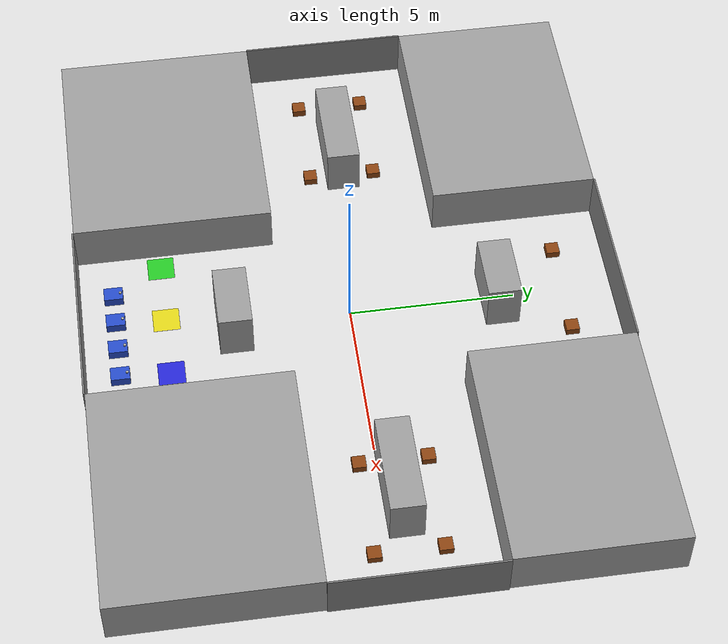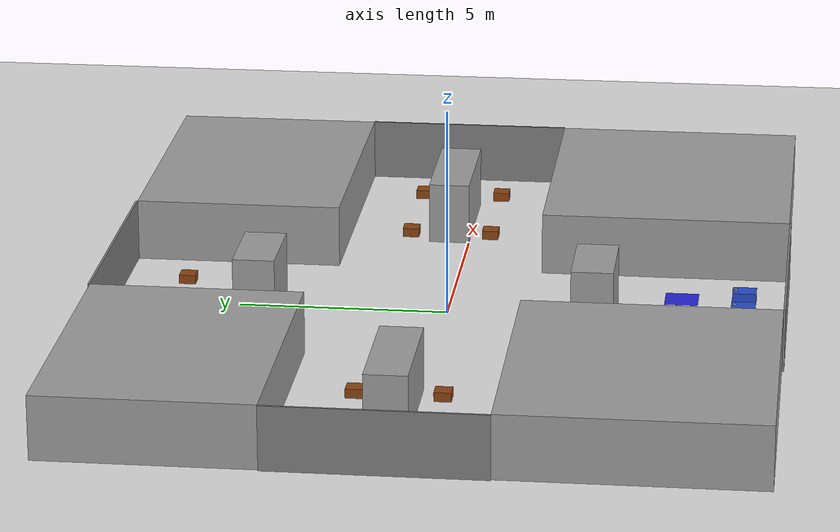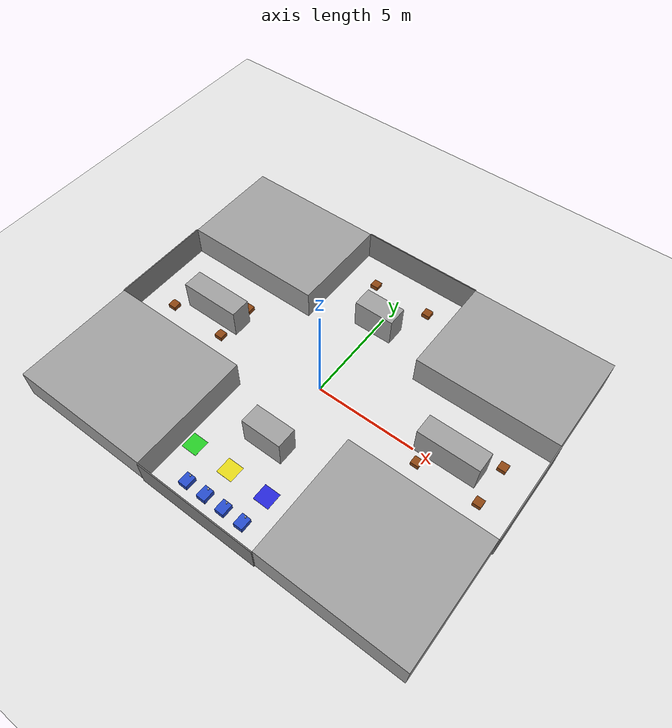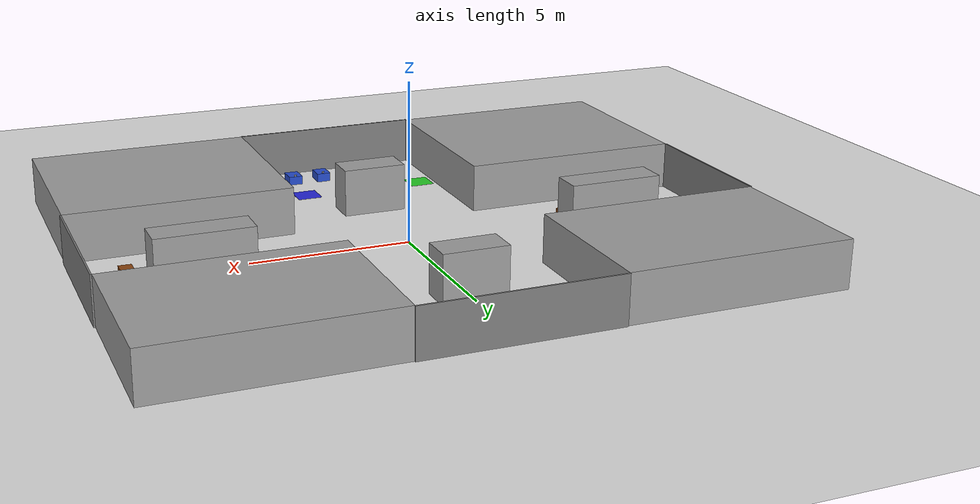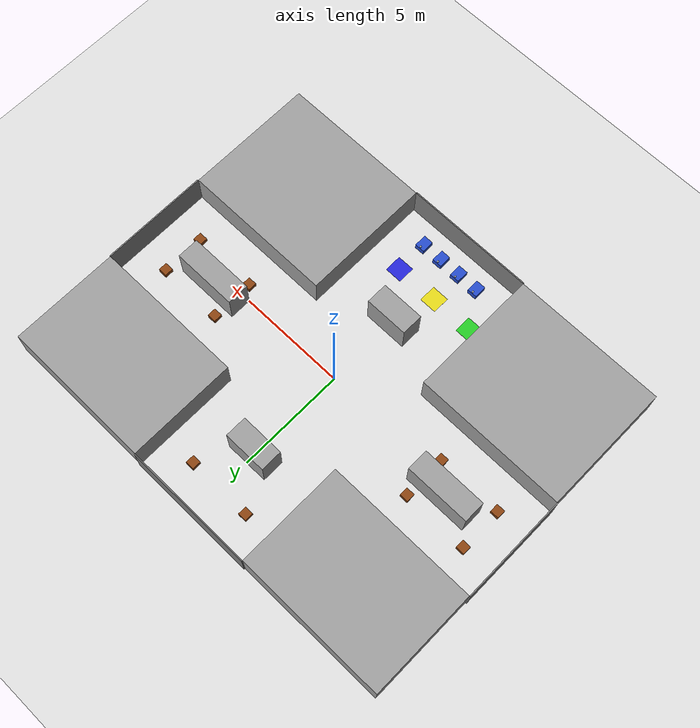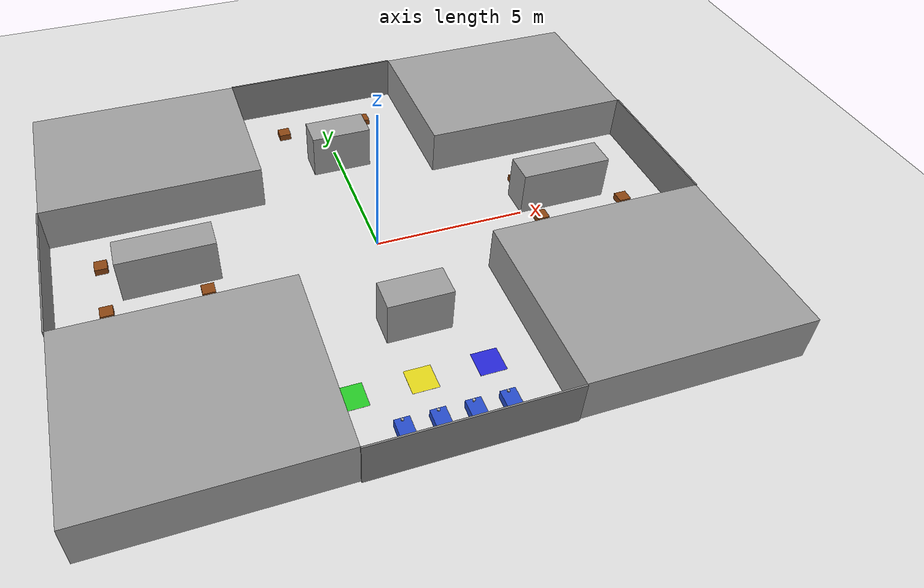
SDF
<?xml version="1.0" ?>
<sdf version="1.6">
  <world name="warehouse_cross">

    <!-- ==================== 光照 ==================== -->
    <light name="sun" type="directional">
      <cast_shadows>1</cast_shadows>
      <pose>0 0 10 0 0 0</pose>
      <diffuse>0.8 0.8 0.8 1</diffuse>
      <specular>0.2 0.2 0.2 1</specular>
      <attenuation>
        <range>1000</range>
        <constant>0.9</constant>
        <linear>0.01</linear>
        <quadratic>0.001</quadratic>
      </attenuation>
      <direction>-0.5 0.1 -0.9</direction>
    </light>

    <!-- ==================== 地面 ==================== -->
    <model name="ground_plane">
      <static>true</static>
      <link name="link">
        <collision name="collision">
          <geometry>
            <plane><normal>0 0 1</normal><size>100 100</size></plane>
          </geometry>
          <surface>
            <friction><ode><mu>100</mu><mu2>50</mu2></ode></friction>
          </surface>
        </collision>
        <visual name="visual">
          <cast_shadows>false</cast_shadows>
          <geometry>
            <plane><normal>0 0 1</normal><size>100 100</size></plane>
          </geometry>
          <material>
            <ambient>0.88 0.88 0.88 1</ambient>
            <diffuse>0.88 0.88 0.88 1</diffuse>
          </material>
        </visual>
      </link>
    </model>

    <!-- ==================== 物理参数 ==================== -->
    <physics name="default_physics" default="0" type="ode">
      <gravity>0 0 -9.8</gravity>
      <ode>
        <solver>
          <type>quick</type>
          <iters>50</iters>
          <sor>1.3</sor>
        </solver>
        <constraints>
          <cfm>0</cfm>
          <erp>0.2</erp>
          <contact_max_correcting_vel>100</contact_max_correcting_vel>
          <contact_surface_layer>0.001</contact_surface_layer>
        </constraints>
      </ode>
      <real_time_update_rate>1000</real_time_update_rate>
      <max_step_size>0.001</max_step_size>
    </physics>

    <!-- ==================== 外围封闭边界 ==================== -->
    <!-- 北侧通道顶部封边（y=8，x=-3~3） -->
    <model name="boundary_north">
      <static>true</static>
      <pose>0.0 8.025 0.75 0 0 0</pose>
      <link name="link">
        <collision name="col"><geometry><box><size>6.0 0.05 1.5</size></box></geometry></collision>
        <visual name="vis">
          <geometry><box><size>6.0 0.05 1.5</size></box></geometry>
          <material><ambient>0.5 0.5 0.5 1</ambient><diffuse>0.5 0.5 0.5 1</diffuse></material>
        </visual>
      </link>
    </model>

    <!-- 南侧通道底部封边（y=-8，x=-3~3） -->
    <model name="boundary_south">
      <static>true</static>
      <pose>0.0 -8.025 0.75 0 0 0</pose>
      <link name="link">
        <collision name="col"><geometry><box><size>6.0 0.05 1.5</size></box></geometry></collision>
        <visual name="vis">
          <geometry><box><size>6.0 0.05 1.5</size></box></geometry>
          <material><ambient>0.5 0.5 0.5 1</ambient><diffuse>0.5 0.5 0.5 1</diffuse></material>
        </visual>
      </link>
    </model>

    <!-- 西侧横臂封边（x=-10，y=-2.5~2.5） -->
    <model name="boundary_west">
      <static>true</static>
      <pose>-10.025 0.5 0.75 0 0 0</pose>
      <link name="link">
        <collision name="col"><geometry><box><size>0.05 5.0 1.5</size></box></geometry></collision>
        <visual name="vis">
          <geometry><box><size>0.05 5.0 1.5</size></box></geometry>
          <material><ambient>0.5 0.5 0.5 1</ambient><diffuse>0.5 0.5 0.5 1</diffuse></material>
        </visual>
      </link>
    </model>

    <!-- 东侧横臂封边（x=10，y=-2.5~2.5） -->
    <model name="boundary_east">
      <static>true</static>
      <pose>10.025 0.5 0.75 0 0 0</pose>
      <link name="link">
        <collision name="col"><geometry><box><size>0.05 5.0 1.5</size></box></geometry></collision>
        <visual name="vis">
          <geometry><box><size>0.05 5.0 1.5</size></box></geometry>
          <material><ambient>0.5 0.5 0.5 1</ambient><diffuse>0.5 0.5 0.5 1</diffuse></material>
        </visual>
      </link>
    </model>

    <!-- ==================== 主体墙块 ==================== -->

    <!-- NW 墙块：x=[-10,-3], y=[3,8] -->
    <model name="wall_nw">
      <static>true</static>
      <pose>-6.5 5.5 0.75 0 0 0</pose>
      <link name="link">
        <collision name="col"><geometry><box><size>7.0 5.0 1.5</size></box></geometry></collision>
        <visual name="vis">
          <geometry><box><size>7.0 5.0 1.5</size></box></geometry>
          <material><ambient>0.62 0.62 0.62 1</ambient><diffuse>0.62 0.62 0.62 1</diffuse></material>
        </visual>
      </link>
    </model>

    <!-- NE 墙块：x=[3,10], y=[3,8] -->
    <model name="wall_ne">
      <static>true</static>
      <pose>6.5 5.5 0.75 0 0 0</pose>
      <link name="link">
        <collision name="col"><geometry><box><size>7.0 5.0 1.5</size></box></geometry></collision>
        <visual name="vis">
          <geometry><box><size>7.0 5.0 1.5</size></box></geometry>
          <material><ambient>0.62 0.62 0.62 1</ambient><diffuse>0.62 0.62 0.62 1</diffuse></material>
        </visual>
      </link>
    </model>

    <!-- 北瓶颈隔墙：x=[-1,1], y=[3,4] -->
    <model name="wall_n_btl">
      <static>true</static>
      <pose>0.0 4.5 0.75 0 0 0</pose>
      <link name="link">
        <collision name="col"><geometry><box><size>2.0 1.0 1.5</size></box></geometry></collision>
        <visual name="vis">
          <geometry><box><size>2.0 1.0 1.5</size></box></geometry>
          <material><ambient>0.62 0.62 0.62 1</ambient><diffuse>0.62 0.62 0.62 1</diffuse></material>
        </visual>
      </link>
    </model>

    <!-- SW 墙块：x=[-10,-3], y=[-8,-2] -->
    <model name="wall_sw">
      <static>true</static>
      <pose>-6.5 -5.0 0.75 0 0 0</pose>
      <link name="link">
        <collision name="col"><geometry><box><size>7.0 6.0 1.5</size></box></geometry></collision>
        <visual name="vis">
          <geometry><box><size>7.0 6.0 1.5</size></box></geometry>
          <material><ambient>0.62 0.62 0.62 1</ambient><diffuse>0.62 0.62 0.62 1</diffuse></material>
        </visual>
      </link>
    </model>

    <!-- SE 墙块：x=[3,10], y=[-8,-2] -->
    <model name="wall_se">
      <static>true</static>
      <pose>6.5 -5.0 0.75 0 0 0</pose>
      <link name="link">
        <collision name="col"><geometry><box><size>7.0 6.0 1.5</size></box></geometry></collision>
        <visual name="vis">
          <geometry><box><size>7.0 6.0 1.5</size></box></geometry>
          <material><ambient>0.62 0.62 0.62 1</ambient><diffuse>0.62 0.62 0.62 1</diffuse></material>
        </visual>
      </link>
    </model>

    <!-- 南瓶颈隔墙：x=[-1,1], y=[-4,-3] -->
    <model name="wall_s_btl">
      <static>true</static>
      <pose>0.0 -3.5 0.75 0 0 0</pose>
      <link name="link">
        <collision name="col"><geometry><box><size>2.0 1.0 1.5</size></box></geometry></collision>
        <visual name="vis">
          <geometry><box><size>2.0 1.0 1.5</size></box></geometry>
          <material><ambient>0.62 0.62 0.62 1</ambient><diffuse>0.62 0.62 0.62 1</diffuse></material>
        </visual>
      </link>
    </model>

    <!-- 西走廊隔墙：x=[-8,-5], y=[0,1] -->
    <model name="wall_corridor_w">
      <static>true</static>
      <pose>-6.5 0.5 0.75 0 0 0</pose>
      <link name="link">
        <collision name="col"><geometry><box><size>3.0 1.0 1.5</size></box></geometry></collision>
        <visual name="vis">
          <geometry><box><size>3.0 1.0 1.5</size></box></geometry>
          <material><ambient>0.62 0.62 0.62 1</ambient><diffuse>0.62 0.62 0.62 1</diffuse></material>
        </visual>
      </link>
    </model>

    <!-- 东走廊隔墙：x=[5,8], y=[0,1] -->
    <model name="wall_corridor_e">
      <static>true</static>
      <pose>6.5 0.5 0.75 0 0 0</pose>
      <link name="link">
        <collision name="col"><geometry><box><size>3.0 1.0 1.5</size></box></geometry></collision>
        <visual name="vis">
          <geometry><box><size>3.0 1.0 1.5</size></box></geometry>
          <material><ambient>0.62 0.62 0.62 1</ambient><diffuse>0.62 0.62 0.62 1</diffuse></material>
        </visual>
      </link>
    </model>

    <!-- ==================== 货架（10个）==================== -->

    <!-- shelf_0: (-1.5, 6.5) -->
    <model name="shelf_0">
      <static>true</static>
      <pose>-1.5 6.5 0.11 0 0 0</pose>
      <link name="link">
        <collision name="col"><geometry><box><size>0.4 0.4 0.22</size></box></geometry></collision>
        <visual name="vis">
          <geometry><box><size>0.4 0.4 0.22</size></box></geometry>
          <material><ambient>0.55 0.27 0.07 1</ambient><diffuse>0.55 0.27 0.07 1</diffuse></material>
        </visual>
      </link>
    </model>

    <!-- shelf_1: (1.5, 6.5) -->
    <model name="shelf_1">
      <static>true</static>
      <pose>1.5 6.5 0.11 0 0 0</pose>
      <link name="link">
        <collision name="col"><geometry><box><size>0.4 0.4 0.22</size></box></geometry></collision>
        <visual name="vis">
          <geometry><box><size>0.4 0.4 0.22</size></box></geometry>
          <material><ambient>0.55 0.27 0.07 1</ambient><diffuse>0.55 0.27 0.07 1</diffuse></material>
        </visual>
      </link>
    </model>

    <!-- shelf_2: (-8.5, 1.5) -->
    <model name="shelf_2">
      <static>true</static>
      <pose>-8.5 1.5 0.11 0 0 0</pose>
      <link name="link">
        <collision name="col"><geometry><box><size>0.4 0.4 0.22</size></box></geometry></collision>
        <visual name="vis">
          <geometry><box><size>0.4 0.4 0.22</size></box></geometry>
          <material><ambient>0.55 0.27 0.07 1</ambient><diffuse>0.55 0.27 0.07 1</diffuse></material>
        </visual>
      </link>
    </model>

    <!-- shelf_3: (-5.5, 1.5) -->
    <model name="shelf_3">
      <static>true</static>
      <pose>-5.5 1.5 0.11 0 0 0</pose>
      <link name="link">
        <collision name="col"><geometry><box><size>0.4 0.4 0.22</size></box></geometry></collision>
        <visual name="vis">
          <geometry><box><size>0.4 0.4 0.22</size></box></geometry>
          <material><ambient>0.55 0.27 0.07 1</ambient><diffuse>0.55 0.27 0.07 1</diffuse></material>
        </visual>
      </link>
    </model>

    <!-- shelf_4: (-8.5, -0.5) -->
    <model name="shelf_4">
      <static>true</static>
      <pose>-8.5 -0.5 0.11 0 0 0</pose>
      <link name="link">
        <collision name="col"><geometry><box><size>0.4 0.4 0.22</size></box></geometry></collision>
        <visual name="vis">
          <geometry><box><size>0.4 0.4 0.22</size></box></geometry>
          <material><ambient>0.55 0.27 0.07 1</ambient><diffuse>0.55 0.27 0.07 1</diffuse></material>
        </visual>
      </link>
    </model>

    <!-- shelf_5: (-5.5, -0.5) -->
    <model name="shelf_5">
      <static>true</static>
      <pose>-5.5 -0.5 0.11 0 0 0</pose>
      <link name="link">
        <collision name="col"><geometry><box><size>0.4 0.4 0.22</size></box></geometry></collision>
        <visual name="vis">
          <geometry><box><size>0.4 0.4 0.22</size></box></geometry>
          <material><ambient>0.55 0.27 0.07 1</ambient><diffuse>0.55 0.27 0.07 1</diffuse></material>
        </visual>
      </link>
    </model>

    <!-- shelf_6: (5.5, 1.5) -->
    <model name="shelf_6">
      <static>true</static>
      <pose>5.5 1.5 0.11 0 0 0</pose>
      <link name="link">
        <collision name="col"><geometry><box><size>0.4 0.4 0.22</size></box></geometry></collision>
        <visual name="vis">
          <geometry><box><size>0.4 0.4 0.22</size></box></geometry>
          <material><ambient>0.55 0.27 0.07 1</ambient><diffuse>0.55 0.27 0.07 1</diffuse></material>
        </visual>
      </link>
    </model>

    <!-- shelf_7: (8.5, 1.5) -->
    <model name="shelf_7">
      <static>true</static>
      <pose>8.5 1.5 0.11 0 0 0</pose>
      <link name="link">
        <collision name="col"><geometry><box><size>0.4 0.4 0.22</size></box></geometry></collision>
        <visual name="vis">
          <geometry><box><size>0.4 0.4 0.22</size></box></geometry>
          <material><ambient>0.55 0.27 0.07 1</ambient><diffuse>0.55 0.27 0.07 1</diffuse></material>
        </visual>
      </link>
    </model>

    <!-- shelf_8: (5.5, -0.5) -->
    <model name="shelf_8">
      <static>true</static>
      <pose>5.5 -0.5 0.11 0 0 0</pose>
      <link name="link">
        <collision name="col"><geometry><box><size>0.4 0.4 0.22</size></box></geometry></collision>
        <visual name="vis">
          <geometry><box><size>0.4 0.4 0.22</size></box></geometry>
          <material><ambient>0.55 0.27 0.07 1</ambient><diffuse>0.55 0.27 0.07 1</diffuse></material>
        </visual>
      </link>
    </model>

    <!-- shelf_9: (8.5, -0.5) -->
    <model name="shelf_9">
      <static>true</static>
      <pose>8.5 -0.5 0.11 0 0 0</pose>
      <link name="link">
        <collision name="col"><geometry><box><size>0.4 0.4 0.22</size></box></geometry></collision>
        <visual name="vis">
          <geometry><box><size>0.4 0.4 0.22</size></box></geometry>
          <material><ambient>0.55 0.27 0.07 1</ambient><diffuse>0.55 0.27 0.07 1</diffuse></material>
        </visual>
      </link>
    </model>

    <!-- ==================== 投递区（纯视觉，无碰撞）==================== -->

    <!-- delivery_A: (-2.5, -5.5)，绿色 -->
    <model name="delivery_A">
      <static>true</static>
      <pose>-2.5 -5.5 0.001 0 0 0</pose>
      <link name="link">
        <visual name="vis">
          <geometry><box><size>0.8 0.8 0.002</size></box></geometry>
          <material>
            <ambient>0.15 0.80 0.15 1</ambient>
            <diffuse>0.15 0.80 0.15 1</diffuse>
          </material>
        </visual>
      </link>
    </model>

    <!-- delivery_B: (-0.5, -5.5)，黄色 -->
    <model name="delivery_B">
      <static>true</static>
      <pose>-0.5 -5.5 0.001 0 0 0</pose>
      <link name="link">
        <visual name="vis">
          <geometry><box><size>0.8 0.8 0.002</size></box></geometry>
          <material>
            <ambient>0.90 0.85 0.10 1</ambient>
            <diffuse>0.90 0.85 0.10 1</diffuse>
          </material>
        </visual>
      </link>
    </model>

    <!-- delivery_C: (1.5, -5.5)，蓝色 -->
    <model name="delivery_C">
      <static>true</static>
      <pose>1.5 -5.5 0.001 0 0 0</pose>
      <link name="link">
        <visual name="vis">
          <geometry><box><size>0.8 0.8 0.002</size></box></geometry>
          <material>
            <ambient>0.15 0.15 0.85 1</ambient>
            <diffuse>0.15 0.15 0.85 1</diffuse>
          </material>
        </visual>
      </link>
    </model>

    <model name="robot_0">
      <pose>-1.5 -7.0 0 0 0 1.5707963</pose>
      <static>false</static>
    <link name='base_footprint'>
      <inertial>
        <pose>0.00107 0 0.001493 0 -0 0</pose>
        <mass>20.1</mass>
        <inertia>
          <ixx>0.509955</ixx>
          <ixy>-6.46235e-27</ixy>
          <ixz>-0.00641791</ixz>
          <iyy>0.514555</iyy>
          <iyz>0</iyz>
          <izz>0.5056</izz>
        </inertia>
      </inertial>
      <collision name='base_footprint_fixed_joint_lump__base_link_collision'>
        <pose>0 0 0.14 0 -0 0</pose>
        <geometry>
          <box>
            <size>0.57 0.45 0.28</size>
          </box>
        </geometry>
        <surface>
          <contact>
            <ode/>
          </contact>
          <friction>
            <ode/>
          </friction>
        </surface>
      </collision>
      <collision name='base_footprint_fixed_joint_lump__laser_collision_1'>
        <pose>0.215 0 0.3 0 -0 3.14159</pose>
        <geometry>
          <cylinder>
            <length>0.04</length>
            <radius>0.04</radius>
          </cylinder>
        </geometry>
        <surface>
          <contact>
            <ode/>
          </contact>
          <friction>
            <ode/>
          </friction>
        </surface>
      </collision>
      <visual name='base_footprint_fixed_joint_lump__base_link_visual'>
        <pose>0 0 0.14 0 -0 0</pose>
        <geometry>
          <box>
            <size>0.57 0.45 0.28</size>
          </box>
        </geometry>
        <material>
          <script>
            <name>Gazebo/Blue</name>
            <uri>file://media/materials/scripts/gazebo.material</uri>
          </script>
        </material>
      </visual>
      <visual name='base_footprint_fixed_joint_lump__laser_visual_1'>
        <pose>0.215 0 0.3 0 -0 3.14159</pose>
        <geometry>
          <cylinder>
            <length>0.04</length>
            <radius>0.04</radius>
          </cylinder>
        </geometry>
      </visual>
      <sensor name='rplidar_sensor' type='ray'>
        <visualize>0</visualize>
        <update_rate>10</update_rate>
        <ray>
          <scan>
            <horizontal>
              <samples>360</samples>
              <resolution>1</resolution>
              <min_angle>-3.14159</min_angle>
              <max_angle>3.14159</max_angle>
            </horizontal>
          </scan>
          <range>
            <min>0.1</min>
            <max>10</max>
          </range>
        </ray>
        <plugin name='rplidar_ros_controller' filename='libgazebo_ros_laser.so'>
          <robotNamespace>robot_0</robotNamespace>
          <topicName>scan_raw</topicName>
          <frameName>laser</frameName>
        </plugin>
        <pose>0.215 0 0.32 0 -0 3.14159</pose>
      </sensor>
    </link>
    <plugin name='planar_controller' filename='libgazebo_ros_planar_move.so'>
      <robotNamespace>robot_0</robotNamespace>
      <commandTopic>cmd_vel</commandTopic>
      <odometryTopic>odom</odometryTopic>
      <odometryFrame>odom</odometryFrame>
      <odometryRate>20.0</odometryRate>
      <robotBaseFrame>base_footprint</robotBaseFrame>
      <broadcastTF>0</broadcastTF>
    </plugin>
    <frame name='laser_joint' attached_to='base_link'>
      <pose>0.215 0 0.3 0 -0 3.14159</pose>
    </frame>
    <frame name='laser' attached_to='laser_joint'/>
    <frame name='base_joint' attached_to='base_footprint'>
      <pose>0 0 0 0 -0 0</pose>
    </frame>
    <frame name='base_link' attached_to='base_joint'/>
      </model>

    <model name="robot_1">
      <pose>-0.5 -7.0 0 0 0 1.5707963</pose>
      <static>false</static>
    <link name='base_footprint'>
      <inertial>
        <pose>0.00107 0 0.001493 0 -0 0</pose>
        <mass>20.1</mass>
        <inertia>
          <ixx>0.509955</ixx>
          <ixy>-6.46235e-27</ixy>
          <ixz>-0.00641791</ixz>
          <iyy>0.514555</iyy>
          <iyz>0</iyz>
          <izz>0.5056</izz>
        </inertia>
      </inertial>
      <collision name='base_footprint_fixed_joint_lump__base_link_collision'>
        <pose>0 0 0.14 0 -0 0</pose>
        <geometry>
          <box>
            <size>0.57 0.45 0.28</size>
          </box>
        </geometry>
        <surface>
          <contact>
            <ode/>
          </contact>
          <friction>
            <ode/>
          </friction>
        </surface>
      </collision>
      <collision name='base_footprint_fixed_joint_lump__laser_collision_1'>
        <pose>0.215 0 0.3 0 -0 3.14159</pose>
        <geometry>
          <cylinder>
            <length>0.04</length>
            <radius>0.04</radius>
          </cylinder>
        </geometry>
        <surface>
          <contact>
            <ode/>
          </contact>
          <friction>
            <ode/>
          </friction>
        </surface>
      </collision>
      <visual name='base_footprint_fixed_joint_lump__base_link_visual'>
        <pose>0 0 0.14 0 -0 0</pose>
        <geometry>
          <box>
            <size>0.57 0.45 0.28</size>
          </box>
        </geometry>
        <material>
          <script>
            <name>Gazebo/Blue</name>
            <uri>file://media/materials/scripts/gazebo.material</uri>
          </script>
        </material>
      </visual>
      <visual name='base_footprint_fixed_joint_lump__laser_visual_1'>
        <pose>0.215 0 0.3 0 -0 3.14159</pose>
        <geometry>
          <cylinder>
            <length>0.04</length>
            <radius>0.04</radius>
          </cylinder>
        </geometry>
      </visual>
      <sensor name='rplidar_sensor' type='ray'>
        <visualize>0</visualize>
        <update_rate>10</update_rate>
        <ray>
          <scan>
            <horizontal>
              <samples>360</samples>
              <resolution>1</resolution>
              <min_angle>-3.14159</min_angle>
              <max_angle>3.14159</max_angle>
            </horizontal>
          </scan>
          <range>
            <min>0.1</min>
            <max>10</max>
          </range>
        </ray>
        <plugin name='rplidar_ros_controller' filename='libgazebo_ros_laser.so'>
          <robotNamespace>robot_1</robotNamespace>
          <topicName>scan_raw</topicName>
          <frameName>laser</frameName>
        </plugin>
        <pose>0.215 0 0.32 0 -0 3.14159</pose>
      </sensor>
    </link>
    <plugin name='planar_controller' filename='libgazebo_ros_planar_move.so'>
      <robotNamespace>robot_1</robotNamespace>
      <commandTopic>cmd_vel</commandTopic>
      <odometryTopic>odom</odometryTopic>
      <odometryFrame>odom</odometryFrame>
      <odometryRate>20.0</odometryRate>
      <robotBaseFrame>base_footprint</robotBaseFrame>
      <broadcastTF>0</broadcastTF>
    </plugin>
    <frame name='laser_joint' attached_to='base_link'>
      <pose>0.215 0 0.3 0 -0 3.14159</pose>
    </frame>
    <frame name='laser' attached_to='laser_joint'/>
    <frame name='base_joint' attached_to='base_footprint'>
      <pose>0 0 0 0 -0 0</pose>
    </frame>
    <frame name='base_link' attached_to='base_joint'/>
      </model>

    <model name="robot_2">
      <pose>0.5 -7.0 0 0 0 1.5707963</pose>
      <static>false</static>
    <link name='base_footprint'>
      <inertial>
        <pose>0.00107 0 0.001493 0 -0 0</pose>
        <mass>20.1</mass>
        <inertia>
          <ixx>0.509955</ixx>
          <ixy>-6.46235e-27</ixy>
          <ixz>-0.00641791</ixz>
          <iyy>0.514555</iyy>
          <iyz>0</iyz>
          <izz>0.5056</izz>
        </inertia>
      </inertial>
      <collision name='base_footprint_fixed_joint_lump__base_link_collision'>
        <pose>0 0 0.14 0 -0 0</pose>
        <geometry>
          <box>
            <size>0.57 0.45 0.28</size>
          </box>
        </geometry>
        <surface>
          <contact>
            <ode/>
          </contact>
          <friction>
            <ode/>
          </friction>
        </surface>
      </collision>
      <collision name='base_footprint_fixed_joint_lump__laser_collision_1'>
        <pose>0.215 0 0.3 0 -0 3.14159</pose>
        <geometry>
          <cylinder>
            <length>0.04</length>
            <radius>0.04</radius>
          </cylinder>
        </geometry>
        <surface>
          <contact>
            <ode/>
          </contact>
          <friction>
            <ode/>
          </friction>
        </surface>
      </collision>
      <visual name='base_footprint_fixed_joint_lump__base_link_visual'>
        <pose>0 0 0.14 0 -0 0</pose>
        <geometry>
          <box>
            <size>0.57 0.45 0.28</size>
          </box>
        </geometry>
        <material>
          <script>
            <name>Gazebo/Blue</name>
            <uri>file://media/materials/scripts/gazebo.material</uri>
          </script>
        </material>
      </visual>
      <visual name='base_footprint_fixed_joint_lump__laser_visual_1'>
        <pose>0.215 0 0.3 0 -0 3.14159</pose>
        <geometry>
          <cylinder>
            <length>0.04</length>
            <radius>0.04</radius>
          </cylinder>
        </geometry>
      </visual>
      <sensor name='rplidar_sensor' type='ray'>
        <visualize>0</visualize>
        <update_rate>10</update_rate>
        <ray>
          <scan>
            <horizontal>
              <samples>360</samples>
              <resolution>1</resolution>
              <min_angle>-3.14159</min_angle>
              <max_angle>3.14159</max_angle>
            </horizontal>
          </scan>
          <range>
            <min>0.1</min>
            <max>10</max>
          </range>
        </ray>
        <plugin name='rplidar_ros_controller' filename='libgazebo_ros_laser.so'>
          <robotNamespace>robot_2</robotNamespace>
          <topicName>scan_raw</topicName>
          <frameName>laser</frameName>
        </plugin>
        <pose>0.215 0 0.32 0 -0 3.14159</pose>
      </sensor>
    </link>
    <plugin name='planar_controller' filename='libgazebo_ros_planar_move.so'>
      <robotNamespace>robot_2</robotNamespace>
      <commandTopic>cmd_vel</commandTopic>
      <odometryTopic>odom</odometryTopic>
      <odometryFrame>odom</odometryFrame>
      <odometryRate>20.0</odometryRate>
      <robotBaseFrame>base_footprint</robotBaseFrame>
      <broadcastTF>0</broadcastTF>
    </plugin>
    <frame name='laser_joint' attached_to='base_link'>
      <pose>0.215 0 0.3 0 -0 3.14159</pose>
    </frame>
    <frame name='laser' attached_to='laser_joint'/>
    <frame name='base_joint' attached_to='base_footprint'>
      <pose>0 0 0 0 -0 0</pose>
    </frame>
    <frame name='base_link' attached_to='base_joint'/>
      </model>

    <model name="robot_3">
      <pose>1.5 -7.0 0 0 0 1.5707963</pose>
      <static>false</static>
    <link name='base_footprint'>
      <inertial>
        <pose>0.00107 0 0.001493 0 -0 0</pose>
        <mass>20.1</mass>
        <inertia>
          <ixx>0.509955</ixx>
          <ixy>-6.46235e-27</ixy>
          <ixz>-0.00641791</ixz>
          <iyy>0.514555</iyy>
          <iyz>0</iyz>
          <izz>0.5056</izz>
        </inertia>
      </inertial>
      <collision name='base_footprint_fixed_joint_lump__base_link_collision'>
        <pose>0 0 0.14 0 -0 0</pose>
        <geometry>
          <box>
            <size>0.57 0.45 0.28</size>
          </box>
        </geometry>
        <surface>
          <contact>
            <ode/>
          </contact>
          <friction>
            <ode/>
          </friction>
        </surface>
      </collision>
      <collision name='base_footprint_fixed_joint_lump__laser_collision_1'>
        <pose>0.215 0 0.3 0 -0 3.14159</pose>
        <geometry>
          <cylinder>
            <length>0.04</length>
            <radius>0.04</radius>
          </cylinder>
        </geometry>
        <surface>
          <contact>
            <ode/>
          </contact>
          <friction>
            <ode/>
          </friction>
        </surface>
      </collision>
      <visual name='base_footprint_fixed_joint_lump__base_link_visual'>
        <pose>0 0 0.14 0 -0 0</pose>
        <geometry>
          <box>
            <size>0.57 0.45 0.28</size>
          </box>
        </geometry>
        <material>
          <script>
            <name>Gazebo/Blue</name>
            <uri>file://media/materials/scripts/gazebo.material</uri>
          </script>
        </material>
      </visual>
      <visual name='base_footprint_fixed_joint_lump__laser_visual_1'>
        <pose>0.215 0 0.3 0 -0 3.14159</pose>
        <geometry>
          <cylinder>
            <length>0.04</length>
            <radius>0.04</radius>
          </cylinder>
        </geometry>
      </visual>
      <sensor name='rplidar_sensor' type='ray'>
        <visualize>0</visualize>
        <update_rate>10</update_rate>
        <ray>
          <scan>
            <horizontal>
              <samples>360</samples>
              <resolution>1</resolution>
              <min_angle>-3.14159</min_angle>
              <max_angle>3.14159</max_angle>
            </horizontal>
          </scan>
          <range>
            <min>0.1</min>
            <max>10</max>
          </range>
        </ray>
        <plugin name='rplidar_ros_controller' filename='libgazebo_ros_laser.so'>
          <robotNamespace>robot_3</robotNamespace>
          <topicName>scan_raw</topicName>
          <frameName>laser</frameName>
        </plugin>
        <pose>0.215 0 0.32 0 -0 3.14159</pose>
      </sensor>
    </link>
    <plugin name='planar_controller' filename='libgazebo_ros_planar_move.so'>
      <robotNamespace>robot_3</robotNamespace>
      <commandTopic>cmd_vel</commandTopic>
      <odometryTopic>odom</odometryTopic>
      <odometryFrame>odom</odometryFrame>
      <odometryRate>20.0</odometryRate>
      <robotBaseFrame>base_footprint</robotBaseFrame>
      <broadcastTF>0</broadcastTF>
    </plugin>
    <frame name='laser_joint' attached_to='base_link'>
      <pose>0.215 0 0.3 0 -0 3.14159</pose>
    </frame>
    <frame name='laser' attached_to='laser_joint'/>
    <frame name='base_joint' attached_to='base_footprint'>
      <pose>0 0 0 0 -0 0</pose>
    </frame>
    <frame name='base_link' attached_to='base_joint'/>
      </model>
</world>
</sdf>
